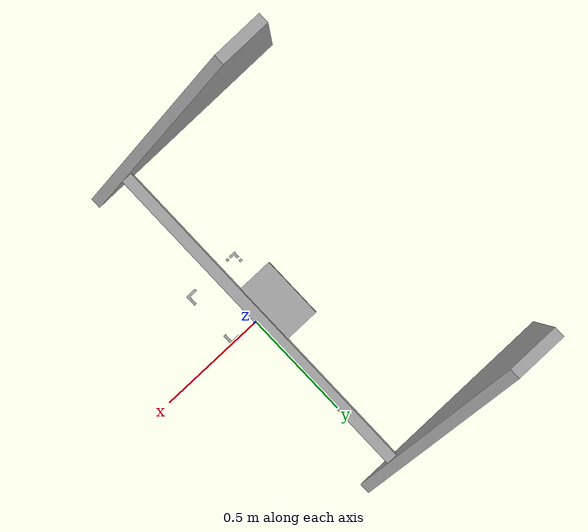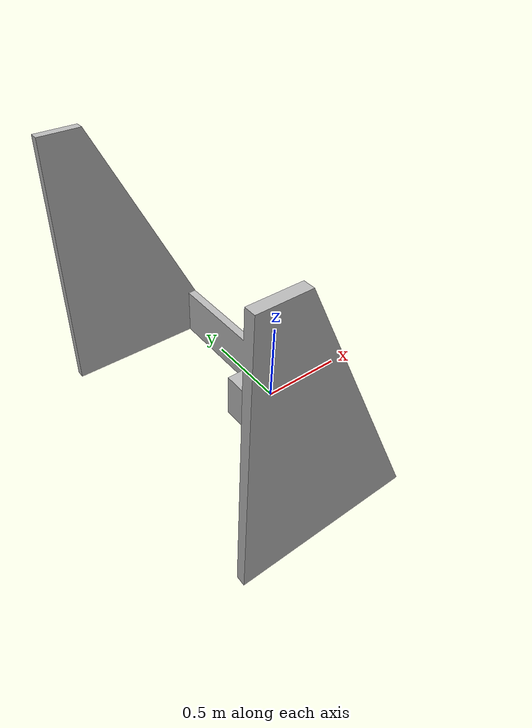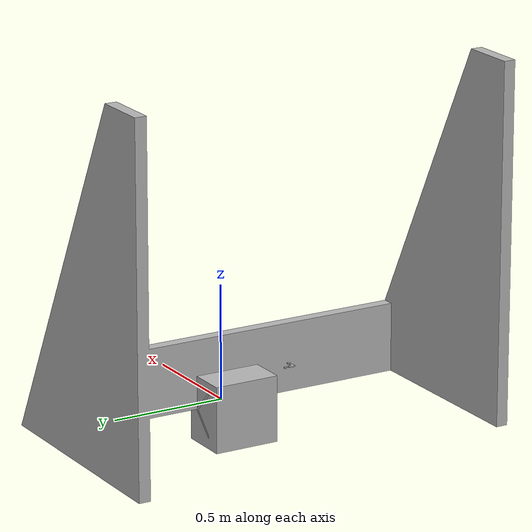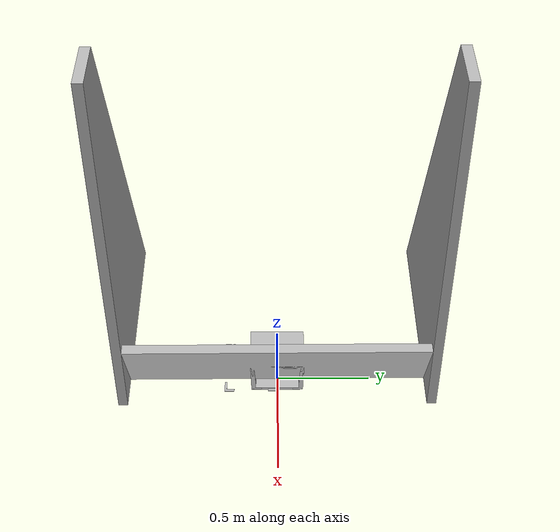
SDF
<sdf version='1.7'>
  <model name='exchanger'>
    <joint name='world_joint' type='fixed'>
      <pose relative_to='__model__'>0 0 0 0 -0 0</pose>
      <parent>world</parent>
      <child>exchanger</child>
    </joint>
    <link name='exchanger'>
      <pose relative_to='world_joint'>0 0 0 0 -0 0</pose>
      <inertial>
        <pose>0 0 0 0 -0 0</pose>
        <mass>1</mass>
        <inertia>
          <ixx>0.001</ixx>
          <ixy>0</ixy>
          <ixz>0</ixz>
          <iyy>0.001</iyy>
          <iyz>0</iyz>
          <izz>0.001</izz>
        </inertia>
      </inertial>
      <collision name='exchanger_collision'>
        <pose>0 0 0 0 -0 0</pose>
        <geometry>
          <mesh>
            <scale>1 1 1</scale>
            <uri>model://exchanger_des/meshes/exchanger.STL</uri>
          </mesh>
        </geometry>
      </collision>
      <visual name='exchanger_visual'>
        <pose>0 0 0 0 -0 0</pose>
        <geometry>
          <mesh>
            <scale>1 1 1</scale>
            <uri>model://exchanger_des/meshes/exchanger.STL</uri>
          </mesh>
        </geometry>
      </visual>
    </link>
    <joint name='J_px' type='prismatic'>
      <pose relative_to='exchanger'>0 0 0 0 -0 0</pose>
      <parent>exchanger</parent>
      <child>exchange_px</child>
      <axis>
        <xyz>1 0 0</xyz>
        <limit>
          <lower>-0.27</lower>
          <upper>0</upper>
          <effort>1000</effort>
          <velocity>1000</velocity>
        </limit>
        <dynamics>
          <spring_reference>0</spring_reference>
          <spring_stiffness>0</spring_stiffness>
        </dynamics>
      </axis>
    </joint>
    <link name='exchange_px'>
      <pose relative_to='J_px'>0 0 0 0 -0 0</pose>
      <inertial>
        <pose>0 -0 -0.01 0 -0 0</pose>
        <mass>0.09896</mass>
        <inertia>
          <ixx>4.3501e-05</ixx>
          <ixy>-3.7982e-21</ixy>
          <ixz>-1.5165e-22</ixz>
          <iyy>4.3501e-05</iyy>
          <iyz>-1.8521e-22</iyz>
          <izz>8.0405e-05</izz>
        </inertia>
      </inertial>
    </link>
    <joint name='J_py' type='prismatic'>
      <pose relative_to='exchange_px'>0 0 0 0 -0 0</pose>
      <parent>exchange_px</parent>
      <child>exchange_py</child>
      <axis>
        <xyz>0 1 0</xyz>
        <limit>
          <lower>-0.255</lower>
          <upper>0.255</upper>
          <effort>1000</effort>
          <velocity>1000</velocity>
        </limit>
        <dynamics>
          <spring_reference>0</spring_reference>
          <spring_stiffness>0</spring_stiffness>
        </dynamics>
      </axis>
    </joint>
    <link name='exchange_py'>
      <pose relative_to='J_py'>0 0 0 0 -0 0</pose>
      <inertial>
        <pose>0 -0 -0.01 0 -0 0</pose>
        <mass>0.09896</mass>
        <inertia>
          <ixx>4.3501e-05</ixx>
          <ixy>-3.7982e-21</ixy>
          <ixz>-1.5165e-22</ixz>
          <iyy>4.3501e-05</iyy>
          <iyz>-1.8521e-22</iyz>
          <izz>8.0405e-05</izz>
        </inertia>
      </inertial>
    </link>
    <joint name='J_pz' type='prismatic'>
      <pose relative_to='exchange_py'>0 0 0 0 -0 0</pose>
      <parent>exchange_py</parent>
      <child>exchange_pz</child>
      <axis>
        <xyz>0 0 1</xyz>
        <limit>
          <lower>0.72</lower>
          <upper>0.9</upper>
          <effort>1000</effort>
          <velocity>1000</velocity>
        </limit>
        <dynamics>
          <spring_reference>0</spring_reference>
          <spring_stiffness>0</spring_stiffness>
        </dynamics>
      </axis>
    </joint>
    <link name='exchange_pz'>
      <pose relative_to='J_pz'>0 0 0 0 -0 0</pose>
      <inertial>
        <pose>0 -0 -0.01 0 -0 0</pose>
        <mass>0.09896</mass>
        <inertia>
          <ixx>4.3501e-05</ixx>
          <ixy>-3.7982e-21</ixy>
          <ixz>-1.5165e-22</ixz>
          <iyy>4.3501e-05</iyy>
          <iyz>-1.8521e-22</iyz>
          <izz>8.0405e-05</izz>
        </inertia>
      </inertial>
    </link>
    <joint name='J_rz' type='revolute'>
      <pose relative_to='exchange_pz'>0 0 0 0 -0 0</pose>
      <parent>exchange_pz</parent>
      <child>exchange_rz</child>
      <axis>
        <xyz>0 0 1</xyz>
        <limit>
          <lower>-2.35619</lower>
          <upper>2.35619</upper>
          <effort>1000</effort>
          <velocity>1000</velocity>
        </limit>
        <dynamics>
          <spring_reference>0</spring_reference>
          <spring_stiffness>0</spring_stiffness>
        </dynamics>
      </axis>
    </joint>
    <link name='exchange_rz'>
      <pose relative_to='J_rz'>0 0 0 0 -0 0</pose>
      <inertial>
        <pose>0 -0 -0.01 0 -0 0</pose>
        <mass>0.09896</mass>
        <inertia>
          <ixx>4.3501e-05</ixx>
          <ixy>-3.7982e-21</ixy>
          <ixz>-1.5165e-22</ixz>
          <iyy>4.3501e-05</iyy>
          <iyz>-1.8521e-22</iyz>
          <izz>8.0405e-05</izz>
        </inertia>
      </inertial>
    </link>
    <joint name='J_ry' type='revolute'>
      <pose relative_to='exchange_rz'>0 0 0 0 -0 0</pose>
      <parent>exchange_rz</parent>
      <child>exchange_ry</child>
      <axis>
        <xyz>0 -1 0</xyz>
        <limit>
          <lower>0</lower>
          <upper>1.57079</upper>
          <effort>1000</effort>
          <velocity>1000</velocity>
        </limit>
        <dynamics>
          <spring_reference>0</spring_reference>
          <spring_stiffness>0</spring_stiffness>
        </dynamics>
      </axis>
    </joint>
    <link name='exchange_ry'>
      <pose relative_to='J_ry'>0 0 0 0 -0 0</pose>
      <inertial>
        <pose>0 -0 -0.01 0 -0 0</pose>
        <mass>0.09896</mass>
        <inertia>
          <ixx>4.3501e-05</ixx>
          <ixy>-3.7982e-21</ixy>
          <ixz>-1.5165e-22</ixz>
          <iyy>4.3501e-05</iyy>
          <iyz>-1.8521e-22</iyz>
          <izz>8.0405e-05</izz>
        </inertia>
      </inertial>
    </link>
    <joint name='J_rx' type='revolute'>
      <pose relative_to='exchange_ry'>0 0 0 0 -0 0</pose>
      <parent>exchange_ry</parent>
      <child>entry</child>
      <axis>
        <xyz>1 0 0</xyz>
        <limit>
          <lower>-0.78539</lower>
          <upper>0.78539</upper>
          <effort>1000</effort>
          <velocity>1000</velocity>
        </limit>
        <dynamics>
          <spring_reference>0</spring_reference>
          <spring_stiffness>0</spring_stiffness>
        </dynamics>
      </axis>
    </joint>
    <link name='entry'>
      <pose relative_to='J_rx'>0 0 0 0 -0 0</pose>
      <inertial>
        <pose>-0.07275 -0.033 0.03425 0 -0 0</pose>
        <mass>2</mass>
        <inertia>
          <ixx>0.0382734</ixx>
          <ixy>0.00516525</ixy>
          <ixz>-0.00498337</ixz>
          <iyy>0.0216235</iyy>
          <iyz>0.007124</iyz>
          <izz>0.0418201</izz>
        </inertia>
      </inertial>
      <collision name='entry_collision'>
        <pose>0 0 0 0 -0 0</pose>
        <geometry>
          <mesh>
            <scale>1 1 1</scale>
            <uri>model://exchanger_des/meshes/entry.STL</uri>
          </mesh>
        </geometry>
      </collision>
      <visual name='entry_visual'>
        <pose>0 0 0 0 -0 0</pose>
        <geometry>
          <mesh>
            <scale>1 1 1</scale>
            <uri>model://exchanger_des/meshes/entry.STL</uri>
          </mesh>
        </geometry>
      </visual>
      <visual name='entry_fixed_joint_lump__front_lightbar1_visual_1'>
        <pose>0 -0.137 0.137 3.14 1.5708 0</pose>
        <geometry>
          <mesh>
            <scale>1 1 1</scale>
            <uri>model://exchanger_des/meshes/front_light.STL</uri>
          </mesh>
        </geometry>
      </visual>
      <visual name='entry_fixed_joint_lump__left_lightbar_visual_2'>
        <pose>-0.1455 0.144 0 1.57 -0 0</pose>
        <geometry>
          <mesh>
            <scale>1 1 1</scale>
            <uri>model://exchanger_des/meshes/side_light.STL</uri>
          </mesh>
        </geometry>
      </visual>
      <visual name='entry_fixed_joint_lump__right_lightbar_visual_3'>
        <pose>-0.1455 -0.139 0 1.57 -0 0</pose>
        <geometry>
          <mesh>
            <scale>1 1 1</scale>
            <uri>model://exchanger_des/meshes/side_light.STL</uri>
          </mesh>
        </geometry>
      </visual>
    </link>
  </model>
</sdf>
